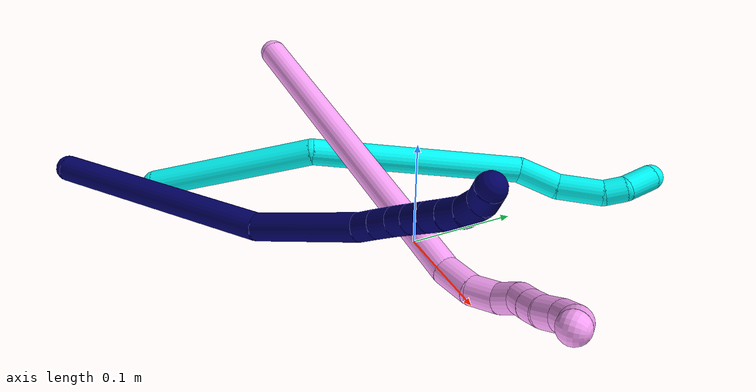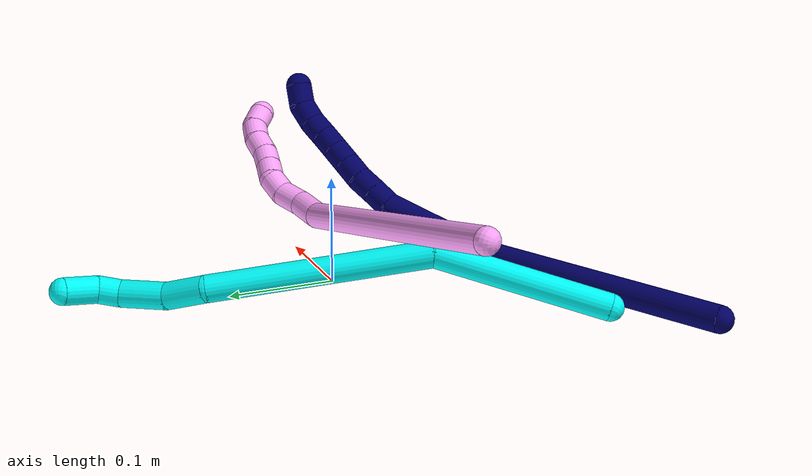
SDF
<sdf version="1.7">
 <world name="default">
  <model name="3">
   <static>0</static>
   <link name="3">
    <collision name="collision-cylinder-e_1_1_4">
     <pose>0.001823 0.079707 0.011138 -1.43196 0.02265 -0.019706</pose>
     <geometry><cylinder><radius>0.0125</radius><length>0.161005</length></cylinder></geometry>
     <surface>
      <friction><ode><mu>1.16</mu><mu2>1.16</mu2><slip1>0</slip1><slip2>0</slip2></ode></friction>
      <contact><ode><kp>1e+06</kp><kd>1</kd><max_vel>0</max_vel><min_depth>0.001</min_depth></ode></contact>
     </surface>
    </collision>
    <visual name="visual-cylinder-e_1_1_4">
     <pose>0.001823 0.079707 0.011138 -1.43196 0.02265 -0.019706</pose>
     <geometry><cylinder><radius>0.0125</radius><length>0.161005</length></cylinder></geometry>
     <material><ambient>0.003922 1 0.996078 1</ambient></material>
    </visual>
    <collision name="collision-cylinder-e_2_4_5">
     <pose>0.03531 0.253431 0.002932 -1.77371 0.318637 -0.389219</pose>
     <geometry><cylinder><radius>0.0125</radius><length>0.202146</length></cylinder></geometry>
     <surface>
      <friction><ode><mu>1.16</mu><mu2>1.16</mu2><slip1>0</slip1><slip2>0</slip2></ode></friction>
      <contact><ode><kp>1e+06</kp><kd>1</kd><max_vel>0</max_vel><min_depth>0.001</min_depth></ode></contact>
     </surface>
    </collision>
    <visual name="visual-cylinder-e_2_4_5">
     <pose>0.03531 0.253431 0.002932 -1.77371 0.318637 -0.389219</pose>
     <geometry><cylinder><radius>0.0125</radius><length>0.202146</length></cylinder></geometry>
     <material><ambient>0.003922 1 0.996078 1</ambient></material>
    </visual>
    <collision name="collision-cylinder-e_3_5_6">
     <pose>0.0789 0.363588 -0.014889 -1.47681 0.634256 -0.580568</pose>
     <geometry><cylinder><radius>0.0125</radius><length>0.040253</length></cylinder></geometry>
     <surface>
      <friction><ode><mu>1.16</mu><mu2>1.16</mu2><slip1>0</slip1><slip2>0</slip2></ode></friction>
      <contact><ode><kp>1e+06</kp><kd>1</kd><max_vel>0</max_vel><min_depth>0.001</min_depth></ode></contact>
     </surface>
    </collision>
    <visual name="visual-cylinder-e_3_5_6">
     <pose>0.0789 0.363588 -0.014889 -1.47681 0.634256 -0.580568</pose>
     <geometry><cylinder><radius>0.0125</radius><length>0.040253</length></cylinder></geometry>
     <material><ambient>0.003922 1 0.996078 1</ambient></material>
    </visual>
    <collision name="collision-cylinder-e_4_6_7">
     <pose>0.098554 0.400028 -0.010831 -1.44645 0.361189 -0.319618</pose>
     <geometry><cylinder><radius>0.0125</radius><length>0.043738</length></cylinder></geometry>
     <surface>
      <friction><ode><mu>1.16</mu><mu2>1.16</mu2><slip1>0</slip1><slip2>0</slip2></ode></friction>
      <contact><ode><kp>1e+06</kp><kd>1</kd><max_vel>0</max_vel><min_depth>0.001</min_depth></ode></contact>
     </surface>
    </collision>
    <visual name="visual-cylinder-e_4_6_7">
     <pose>0.098554 0.400028 -0.010831 -1.44645 0.361189 -0.319618</pose>
     <geometry><cylinder><radius>0.0125</radius><length>0.043738</length></cylinder></geometry>
     <material><ambient>0.003922 1 0.996078 1</ambient></material>
    </visual>
    <collision name="collision-cylinder-e_5_7_8">
     <pose>0.106585 0.430933 -0.008538 -1.59388 0.02849 -0.029155</pose>
     <geometry><cylinder><radius>0.0125</radius><length>0.021225</length></cylinder></geometry>
     <surface>
      <friction><ode><mu>1.16</mu><mu2>1.16</mu2><slip1>0</slip1><slip2>0</slip2></ode></friction>
      <contact><ode><kp>1e+06</kp><kd>1</kd><max_vel>0</max_vel><min_depth>0.001</min_depth></ode></contact>
     </surface>
    </collision>
    <visual name="visual-cylinder-e_5_7_8">
     <pose>0.106585 0.430933 -0.008538 -1.59388 0.02849 -0.029155</pose>
     <geometry><cylinder><radius>0.0125</radius><length>0.021225</length></cylinder></geometry>
     <material><ambient>0.003922 1 0.996078 1</ambient></material>
    </visual>
    <collision name="collision-cylinder-e_6_8_2">
     <pose>0.105081 0.455757 -0.015471 -2.01045 -0.11442 0.179974</pose>
     <geometry><cylinder><radius>0.0125</radius><length>0.031634</length></cylinder></geometry>
     <surface>
      <friction><ode><mu>1.16</mu><mu2>1.16</mu2><slip1>0</slip1><slip2>0</slip2></ode></friction>
      <contact><ode><kp>1e+06</kp><kd>1</kd><max_vel>0</max_vel><min_depth>0.001</min_depth></ode></contact>
     </surface>
    </collision>
    <visual name="visual-cylinder-e_6_8_2">
     <pose>0.105081 0.455757 -0.015471 -2.01045 -0.11442 0.179974</pose>
     <geometry><cylinder><radius>0.0125</radius><length>0.031634</length></cylinder></geometry>
     <material><ambient>0.003922 1 0.996078 1</ambient></material>
    </visual>
    <collision name="collision-sphere-2">
     <pose>0.103275 0.469977 -0.022159 0 -0 0</pose>
     <geometry><sphere><radius>0.0125</radius></sphere></geometry>
     <surface>
      <friction><ode><mu>1.16</mu><mu2>1.16</mu2><slip1>0</slip1><slip2>0</slip2></ode></friction>
      <contact><ode><kp>1e+06</kp><kd>1</kd><max_vel>0</max_vel><min_depth>0.001</min_depth></ode></contact>
     </surface>
    </collision>
    <visual name="visual-sphere-2">
     <pose>0.103275 0.469977 -0.022159 0 -0 0</pose>
     <geometry><sphere><radius>0.0125</radius></sphere></geometry>
     <material><ambient>0.003922 1 0.996078 1</ambient></material>
    </visual>
    <collision name="collision-sphere-4">
     <pose>0.003647 0.159415 0.022275 0 -0 0</pose>
     <geometry><sphere><radius>0.0125</radius></sphere></geometry>
     <surface>
      <friction><ode><mu>1.16</mu><mu2>1.16</mu2><slip1>0</slip1><slip2>0</slip2></ode></friction>
      <contact><ode><kp>1e+06</kp><kd>1</kd><max_vel>0</max_vel><min_depth>0.001</min_depth></ode></contact>
     </surface>
    </collision>
    <visual name="visual-sphere-4">
     <pose>0.003647 0.159415 0.022275 0 -0 0</pose>
     <geometry><sphere><radius>0.0125</radius></sphere></geometry>
     <material><ambient>0.003922 1 0.996078 1</ambient></material>
    </visual>
    <collision name="collision-sphere-1">
     <geometry><sphere><radius>0.0125</radius></sphere></geometry>
     <surface>
      <friction><ode><mu>1.16</mu><mu2>1.16</mu2><slip1>0</slip1><slip2>0</slip2></ode></friction>
      <contact><ode><kp>1e+06</kp><kd>1</kd><max_vel>0</max_vel><min_depth>0.001</min_depth></ode></contact>
     </surface>
    </collision>
    <visual name="visual-sphere-1">
     <geometry><sphere><radius>0.0125</radius></sphere></geometry>
     <material><ambient>0.003922 1 0.996078 1</ambient></material>
    </visual>
    <collision name="collision-sphere-8">
     <pose>0.106887 0.441538 -0.008783 0 -0 0</pose>
     <geometry><sphere><radius>0.0125</radius></sphere></geometry>
     <surface>
      <friction><ode><mu>1.16</mu><mu2>1.16</mu2><slip1>0</slip1><slip2>0</slip2></ode></friction>
      <contact><ode><kp>1e+06</kp><kd>1</kd><max_vel>0</max_vel><min_depth>0.001</min_depth></ode></contact>
     </surface>
    </collision>
    <visual name="visual-sphere-8">
     <pose>0.106887 0.441538 -0.008783 0 -0 0</pose>
     <geometry><sphere><radius>0.0125</radius></sphere></geometry>
     <material><ambient>0.003922 1 0.996078 1</ambient></material>
    </visual>
    <collision name="collision-sphere-5">
     <pose>0.066973 0.347447 -0.016411 0 -0 0</pose>
     <geometry><sphere><radius>0.0125</radius></sphere></geometry>
     <surface>
      <friction><ode><mu>1.16</mu><mu2>1.16</mu2><slip1>0</slip1><slip2>0</slip2></ode></friction>
      <contact><ode><kp>1e+06</kp><kd>1</kd><max_vel>0</max_vel><min_depth>0.001</min_depth></ode></contact>
     </surface>
    </collision>
    <visual name="visual-sphere-5">
     <pose>0.066973 0.347447 -0.016411 0 -0 0</pose>
     <geometry><sphere><radius>0.0125</radius></sphere></geometry>
     <material><ambient>0.003922 1 0.996078 1</ambient></material>
    </visual>
    <collision name="collision-sphere-6">
     <pose>0.090826 0.379728 -0.013368 0 -0 0</pose>
     <geometry><sphere><radius>0.0125</radius></sphere></geometry>
     <surface>
      <friction><ode><mu>1.16</mu><mu2>1.16</mu2><slip1>0</slip1><slip2>0</slip2></ode></friction>
      <contact><ode><kp>1e+06</kp><kd>1</kd><max_vel>0</max_vel><min_depth>0.001</min_depth></ode></contact>
     </surface>
    </collision>
    <visual name="visual-sphere-6">
     <pose>0.090826 0.379728 -0.013368 0 -0 0</pose>
     <geometry><sphere><radius>0.0125</radius></sphere></geometry>
     <material><ambient>0.003922 1 0.996078 1</ambient></material>
    </visual>
    <collision name="collision-sphere-7">
     <pose>0.106283 0.420328 -0.008293 0 -0 0</pose>
     <geometry><sphere><radius>0.0125</radius></sphere></geometry>
     <surface>
      <friction><ode><mu>1.16</mu><mu2>1.16</mu2><slip1>0</slip1><slip2>0</slip2></ode></friction>
      <contact><ode><kp>1e+06</kp><kd>1</kd><max_vel>0</max_vel><min_depth>0.001</min_depth></ode></contact>
     </surface>
    </collision>
    <visual name="visual-sphere-7">
     <pose>0.106283 0.420328 -0.008293 0 -0 0</pose>
     <geometry><sphere><radius>0.0125</radius></sphere></geometry>
     <material><ambient>0.003922 1 0.996078 1</ambient></material>
    </visual>
    <inertial>
     <pose>0.041008 0.239518 0.001284 0 -0 0</pose>
     <mass>0.5</mass>
     <inertia>
      <ixx>0.000729</ixx>
      <ixy>0</ixy>
      <ixz>0</ixz>
      <iyy>-0.000223</iyy>
      <iyz>0</iyz>
      <izz>-0.001252</izz>
     </inertia>
    </inertial>
   </link>
   <pose>-0.17849 -0.191599 0.011336 0.470115 1.0446 0.038012</pose>
  </model>
  <model name="4">
   <static>0</static>
   <link name="4">
    <collision name="collision-cylinder-e_1_1_4">
     <pose>0.07566 0.028278 0.136966 -0.2036 0.495897 -0.05171</pose>
     <geometry><cylinder><radius>0.0125</radius><length>0.318017</length></cylinder></geometry>
     <surface>
      <friction><ode><mu>1.16</mu><mu2>1.16</mu2><slip1>0</slip1><slip2>0</slip2></ode></friction>
      <contact><ode><kp>1e+06</kp><kd>1</kd><max_vel>0</max_vel><min_depth>0.001</min_depth></ode></contact>
     </surface>
    </collision>
    <visual name="visual-cylinder-e_1_1_4">
     <pose>0.07566 0.028278 0.136966 -0.2036 0.495897 -0.05171</pose>
     <geometry><cylinder><radius>0.0125</radius><length>0.318017</length></cylinder></geometry>
     <material><ambient>1 0.65098 0.996078 1</ambient></material>
    </visual>
    <collision name="collision-cylinder-e_2_4_5">
     <pose>0.158236 0.054716 0.289413 0.1183 0.417614 0.025095</pose>
     <geometry><cylinder><radius>0.0125</radius><length>0.034111</length></cylinder></geometry>
     <surface>
      <friction><ode><mu>1.16</mu><mu2>1.16</mu2><slip1>0</slip1><slip2>0</slip2></ode></friction>
      <contact><ode><kp>1e+06</kp><kd>1</kd><max_vel>0</max_vel><min_depth>0.001</min_depth></ode></contact>
     </surface>
    </collision>
    <visual name="visual-cylinder-e_2_4_5">
     <pose>0.158236 0.054716 0.289413 0.1183 0.417614 0.025095</pose>
     <geometry><cylinder><radius>0.0125</radius><length>0.034111</length></cylinder></geometry>
     <material><ambient>1 0.65098 0.996078 1</ambient></material>
    </visual>
    <collision name="collision-cylinder-e_3_5_6">
     <pose>0.166234 0.050766 0.317627 0.164205 0.083484 0.006874</pose>
     <geometry><cylinder><radius>0.0125</radius><length>0.025905</length></cylinder></geometry>
     <surface>
      <friction><ode><mu>1.16</mu><mu2>1.16</mu2><slip1>0</slip1><slip2>0</slip2></ode></friction>
      <contact><ode><kp>1e+06</kp><kd>1</kd><max_vel>0</max_vel><min_depth>0.001</min_depth></ode></contact>
     </surface>
    </collision>
    <visual name="visual-cylinder-e_3_5_6">
     <pose>0.166234 0.050766 0.317627 0.164205 0.083484 0.006874</pose>
     <geometry><cylinder><radius>0.0125</radius><length>0.025905</length></cylinder></geometry>
     <material><ambient>1 0.65098 0.996078 1</ambient></material>
    </visual>
    <collision name="collision-cylinder-e_4_6_7">
     <pose>0.168313 0.043429 0.339307 0.528767 0.096082 0.02603</pose>
     <geometry><cylinder><radius>0.0125</radius><length>0.02082</length></cylinder></geometry>
     <surface>
      <friction><ode><mu>1.16</mu><mu2>1.16</mu2><slip1>0</slip1><slip2>0</slip2></ode></friction>
      <contact><ode><kp>1e+06</kp><kd>1</kd><max_vel>0</max_vel><min_depth>0.001</min_depth></ode></contact>
     </surface>
    </collision>
    <visual name="visual-cylinder-e_4_6_7">
     <pose>0.168313 0.043429 0.339307 0.528767 0.096082 0.02603</pose>
     <geometry><cylinder><radius>0.0125</radius><length>0.02082</length></cylinder></geometry>
     <material><ambient>1 0.65098 0.996078 1</ambient></material>
    </visual>
    <collision name="collision-cylinder-e_5_7_8">
     <pose>0.17466 0.033517 0.355298 0.586943 0.563807 0.174598</pose>
     <geometry><cylinder><radius>0.0125</radius><length>0.020017</length></cylinder></geometry>
     <surface>
      <friction><ode><mu>1.16</mu><mu2>1.16</mu2><slip1>0</slip1><slip2>0</slip2></ode></friction>
      <contact><ode><kp>1e+06</kp><kd>1</kd><max_vel>0</max_vel><min_depth>0.001</min_depth></ode></contact>
     </surface>
    </collision>
    <visual name="visual-cylinder-e_5_7_8">
     <pose>0.17466 0.033517 0.355298 0.586943 0.563807 0.174598</pose>
     <geometry><cylinder><radius>0.0125</radius><length>0.020017</length></cylinder></geometry>
     <material><ambient>1 0.65098 0.996078 1</ambient></material>
    </visual>
    <collision name="collision-cylinder-e_6_8_9">
     <pose>0.184926 0.023934 0.369592 0.59412 0.511995 0.159905</pose>
     <geometry><cylinder><radius>0.0125</radius><length>0.020075</length></cylinder></geometry>
     <surface>
      <friction><ode><mu>1.16</mu><mu2>1.16</mu2><slip1>0</slip1><slip2>0</slip2></ode></friction>
      <contact><ode><kp>1e+06</kp><kd>1</kd><max_vel>0</max_vel><min_depth>0.001</min_depth></ode></contact>
     </surface>
    </collision>
    <visual name="visual-cylinder-e_6_8_9">
     <pose>0.184926 0.023934 0.369592 0.59412 0.511995 0.159905</pose>
     <geometry><cylinder><radius>0.0125</radius><length>0.020075</length></cylinder></geometry>
     <material><ambient>1 0.65098 0.996078 1</ambient></material>
    </visual>
    <collision name="collision-cylinder-e_7_9_10">
     <pose>0.192937 0.014001 0.385527 0.52541 0.298948 0.080953</pose>
     <geometry><cylinder><radius>0.0125</radius><length>0.021008</length></cylinder></geometry>
     <surface>
      <friction><ode><mu>1.16</mu><mu2>1.16</mu2><slip1>0</slip1><slip2>0</slip2></ode></friction>
      <contact><ode><kp>1e+06</kp><kd>1</kd><max_vel>0</max_vel><min_depth>0.001</min_depth></ode></contact>
     </surface>
    </collision>
    <visual name="visual-cylinder-e_7_9_10">
     <pose>0.192937 0.014001 0.385527 0.52541 0.298948 0.080953</pose>
     <geometry><cylinder><radius>0.0125</radius><length>0.021008</length></cylinder></geometry>
     <material><ambient>1 0.65098 0.996078 1</ambient></material>
    </visual>
    <collision name="collision-cylinder-e_8_10_11">
     <pose>0.201074 0.003534 0.400956 0.677976 0.527406 0.189825</pose>
     <geometry><cylinder><radius>0.0125</radius><length>0.020042</length></cylinder></geometry>
     <surface>
      <friction><ode><mu>1.16</mu><mu2>1.16</mu2><slip1>0</slip1><slip2>0</slip2></ode></friction>
      <contact><ode><kp>1e+06</kp><kd>1</kd><max_vel>0</max_vel><min_depth>0.001</min_depth></ode></contact>
     </surface>
    </collision>
    <visual name="visual-cylinder-e_8_10_11">
     <pose>0.201074 0.003534 0.400956 0.677976 0.527406 0.189825</pose>
     <geometry><cylinder><radius>0.0125</radius><length>0.020042</length></cylinder></geometry>
     <material><ambient>1 0.65098 0.996078 1</ambient></material>
    </visual>
    <collision name="collision-cylinder-e_9_11_2">
     <pose>0.213541 -0.008182 0.410036 1.21499 0.83619 0.599149</pose>
     <geometry><cylinder><radius>0.0125</radius><length>0.020006</length></cylinder></geometry>
     <surface>
      <friction><ode><mu>1.16</mu><mu2>1.16</mu2><slip1>0</slip1><slip2>0</slip2></ode></friction>
      <contact><ode><kp>1e+06</kp><kd>1</kd><max_vel>0</max_vel><min_depth>0.001</min_depth></ode></contact>
     </surface>
    </collision>
    <visual name="visual-cylinder-e_9_11_2">
     <pose>0.213541 -0.008182 0.410036 1.21499 0.83619 0.599149</pose>
     <geometry><cylinder><radius>0.0125</radius><length>0.020006</length></cylinder></geometry>
     <material><ambient>1 0.65098 0.996078 1</ambient></material>
    </visual>
    <collision name="collision-sphere-2">
     <pose>0.220964 -0.014467 0.412371 0 -0 0</pose>
     <geometry><sphere><radius>0.0125</radius></sphere></geometry>
     <surface>
      <friction><ode><mu>1.16</mu><mu2>1.16</mu2><slip1>0</slip1><slip2>0</slip2></ode></friction>
      <contact><ode><kp>1e+06</kp><kd>1</kd><max_vel>0</max_vel><min_depth>0.001</min_depth></ode></contact>
     </surface>
    </collision>
    <visual name="visual-sphere-2">
     <pose>0.220964 -0.014467 0.412371 0 -0 0</pose>
     <geometry><sphere><radius>0.0125</radius></sphere></geometry>
     <material><ambient>1 0.65098 0.996078 1</ambient></material>
    </visual>
    <collision name="collision-sphere-11">
     <pose>0.206118 -0.001897 0.4077 0 -0 0</pose>
     <geometry><sphere><radius>0.0125</radius></sphere></geometry>
     <surface>
      <friction><ode><mu>1.16</mu><mu2>1.16</mu2><slip1>0</slip1><slip2>0</slip2></ode></friction>
      <contact><ode><kp>1e+06</kp><kd>1</kd><max_vel>0</max_vel><min_depth>0.001</min_depth></ode></contact>
     </surface>
    </collision>
    <visual name="visual-sphere-11">
     <pose>0.206118 -0.001897 0.4077 0 -0 0</pose>
     <geometry><sphere><radius>0.0125</radius></sphere></geometry>
     <material><ambient>1 0.65098 0.996078 1</ambient></material>
    </visual>
    <collision name="collision-sphere-10">
     <pose>0.196031 0.008966 0.394212 0 -0 0</pose>
     <geometry><sphere><radius>0.0125</radius></sphere></geometry>
     <surface>
      <friction><ode><mu>1.16</mu><mu2>1.16</mu2><slip1>0</slip1><slip2>0</slip2></ode></friction>
      <contact><ode><kp>1e+06</kp><kd>1</kd><max_vel>0</max_vel><min_depth>0.001</min_depth></ode></contact>
     </surface>
    </collision>
    <visual name="visual-sphere-10">
     <pose>0.196031 0.008966 0.394212 0 -0 0</pose>
     <geometry><sphere><radius>0.0125</radius></sphere></geometry>
     <material><ambient>1 0.65098 0.996078 1</ambient></material>
    </visual>
    <collision name="collision-sphere-9">
     <pose>0.189843 0.019035 0.376843 0 -0 0</pose>
     <geometry><sphere><radius>0.0125</radius></sphere></geometry>
     <surface>
      <friction><ode><mu>1.16</mu><mu2>1.16</mu2><slip1>0</slip1><slip2>0</slip2></ode></friction>
      <contact><ode><kp>1e+06</kp><kd>1</kd><max_vel>0</max_vel><min_depth>0.001</min_depth></ode></contact>
     </surface>
    </collision>
    <visual name="visual-sphere-9">
     <pose>0.189843 0.019035 0.376843 0 -0 0</pose>
     <geometry><sphere><radius>0.0125</radius></sphere></geometry>
     <material><ambient>1 0.65098 0.996078 1</ambient></material>
    </visual>
    <collision name="collision-sphere-4">
     <pose>0.151319 0.056556 0.273932 0 -0 0</pose>
     <geometry><sphere><radius>0.0125</radius></sphere></geometry>
     <surface>
      <friction><ode><mu>1.16</mu><mu2>1.16</mu2><slip1>0</slip1><slip2>0</slip2></ode></friction>
      <contact><ode><kp>1e+06</kp><kd>1</kd><max_vel>0</max_vel><min_depth>0.001</min_depth></ode></contact>
     </surface>
    </collision>
    <visual name="visual-sphere-4">
     <pose>0.151319 0.056556 0.273932 0 -0 0</pose>
     <geometry><sphere><radius>0.0125</radius></sphere></geometry>
     <material><ambient>1 0.65098 0.996078 1</ambient></material>
    </visual>
    <collision name="collision-sphere-1">
     <geometry><sphere><radius>0.0125</radius></sphere></geometry>
     <surface>
      <friction><ode><mu>1.16</mu><mu2>1.16</mu2><slip1>0</slip1><slip2>0</slip2></ode></friction>
      <contact><ode><kp>1e+06</kp><kd>1</kd><max_vel>0</max_vel><min_depth>0.001</min_depth></ode></contact>
     </surface>
    </collision>
    <visual name="visual-sphere-1">
     <geometry><sphere><radius>0.0125</radius></sphere></geometry>
     <material><ambient>1 0.65098 0.996078 1</ambient></material>
    </visual>
    <collision name="collision-sphere-8">
     <pose>0.180008 0.028832 0.362341 0 -0 0</pose>
     <geometry><sphere><radius>0.0125</radius></sphere></geometry>
     <surface>
      <friction><ode><mu>1.16</mu><mu2>1.16</mu2><slip1>0</slip1><slip2>0</slip2></ode></friction>
      <contact><ode><kp>1e+06</kp><kd>1</kd><max_vel>0</max_vel><min_depth>0.001</min_depth></ode></contact>
     </surface>
    </collision>
    <visual name="visual-sphere-8">
     <pose>0.180008 0.028832 0.362341 0 -0 0</pose>
     <geometry><sphere><radius>0.0125</radius></sphere></geometry>
     <material><ambient>1 0.65098 0.996078 1</ambient></material>
    </visual>
    <collision name="collision-sphere-5">
     <pose>0.165154 0.052876 0.304893 0 -0 0</pose>
     <geometry><sphere><radius>0.0125</radius></sphere></geometry>
     <surface>
      <friction><ode><mu>1.16</mu><mu2>1.16</mu2><slip1>0</slip1><slip2>0</slip2></ode></friction>
      <contact><ode><kp>1e+06</kp><kd>1</kd><max_vel>0</max_vel><min_depth>0.001</min_depth></ode></contact>
     </surface>
    </collision>
    <visual name="visual-sphere-5">
     <pose>0.165154 0.052876 0.304893 0 -0 0</pose>
     <geometry><sphere><radius>0.0125</radius></sphere></geometry>
     <material><ambient>1 0.65098 0.996078 1</ambient></material>
    </visual>
    <collision name="collision-sphere-6">
     <pose>0.167314 0.048656 0.33036 0 -0 0</pose>
     <geometry><sphere><radius>0.0125</radius></sphere></geometry>
     <surface>
      <friction><ode><mu>1.16</mu><mu2>1.16</mu2><slip1>0</slip1><slip2>0</slip2></ode></friction>
      <contact><ode><kp>1e+06</kp><kd>1</kd><max_vel>0</max_vel><min_depth>0.001</min_depth></ode></contact>
     </surface>
    </collision>
    <visual name="visual-sphere-6">
     <pose>0.167314 0.048656 0.33036 0 -0 0</pose>
     <geometry><sphere><radius>0.0125</radius></sphere></geometry>
     <material><ambient>1 0.65098 0.996078 1</ambient></material>
    </visual>
    <collision name="collision-sphere-7">
     <pose>0.169311 0.038202 0.348254 0 -0 0</pose>
     <geometry><sphere><radius>0.0125</radius></sphere></geometry>
     <surface>
      <friction><ode><mu>1.16</mu><mu2>1.16</mu2><slip1>0</slip1><slip2>0</slip2></ode></friction>
      <contact><ode><kp>1e+06</kp><kd>1</kd><max_vel>0</max_vel><min_depth>0.001</min_depth></ode></contact>
     </surface>
    </collision>
    <visual name="visual-sphere-7">
     <pose>0.169311 0.038202 0.348254 0 -0 0</pose>
     <geometry><sphere><radius>0.0125</radius></sphere></geometry>
     <material><ambient>1 0.65098 0.996078 1</ambient></material>
    </visual>
    <inertial>
     <pose>0.113666 0.028862 0.215183 0 -0 0</pose>
     <mass>0.5</mass>
     <inertia>
      <ixx>0.002276</ixx>
      <ixy>0</ixy>
      <ixz>0</ixz>
      <iyy>0.002539</iyy>
      <iyz>0</iyz>
      <izz>-0.001728</izz>
     </inertia>
    </inertial>
   </link>
   <pose>-0.219901 -0.048855 0.107281 -1.52403 0.205253 -1.0053</pose>
  </model>
  <model name="7">
   <static>0</static>
   <link name="7">
    <collision name="collision-cylinder-e_1_1_4">
     <pose>0.024224 0.093249 0.066481 -0.951439 0.208448 -0.107675</pose>
     <geometry><cylinder><radius>0.0125</radius><length>0.23411</length></cylinder></geometry>
     <surface>
      <friction><ode><mu>1.16</mu><mu2>1.16</mu2><slip1>0</slip1><slip2>0</slip2></ode></friction>
      <contact><ode><kp>1e+06</kp><kd>1</kd><max_vel>0</max_vel><min_depth>0.001</min_depth></ode></contact>
     </surface>
    </collision>
    <visual name="visual-cylinder-e_1_1_4">
     <pose>0.024224 0.093249 0.066481 -0.951439 0.208448 -0.107675</pose>
     <geometry><cylinder><radius>0.0125</radius><length>0.23411</length></cylinder></geometry>
     <material><ambient>0.003922 0 0.403922 1</ambient></material>
    </visual>
    <collision name="collision-cylinder-e_2_4_5">
     <pose>0.052253 0.221552 0.171845 -0.73366 0.072576 -0.027896</pose>
     <geometry><cylinder><radius>0.0125</radius><length>0.104979</length></cylinder></geometry>
     <surface>
      <friction><ode><mu>1.16</mu><mu2>1.16</mu2><slip1>0</slip1><slip2>0</slip2></ode></friction>
      <contact><ode><kp>1e+06</kp><kd>1</kd><max_vel>0</max_vel><min_depth>0.001</min_depth></ode></contact>
     </surface>
    </collision>
    <visual name="visual-cylinder-e_2_4_5">
     <pose>0.052253 0.221552 0.171845 -0.73366 0.072576 -0.027896</pose>
     <geometry><cylinder><radius>0.0125</radius><length>0.104979</length></cylinder></geometry>
     <material><ambient>0.003922 0 0.403922 1</ambient></material>
    </visual>
    <collision name="collision-cylinder-e_3_5_6">
     <pose>0.057667 0.261098 0.21977 -0.461039 0.157863 -0.037122</pose>
     <geometry><cylinder><radius>0.0125</radius><length>0.020447</length></cylinder></geometry>
     <surface>
      <friction><ode><mu>1.16</mu><mu2>1.16</mu2><slip1>0</slip1><slip2>0</slip2></ode></friction>
      <contact><ode><kp>1e+06</kp><kd>1</kd><max_vel>0</max_vel><min_depth>0.001</min_depth></ode></contact>
     </surface>
    </collision>
    <visual name="visual-cylinder-e_3_5_6">
     <pose>0.057667 0.261098 0.21977 -0.461039 0.157863 -0.037122</pose>
     <geometry><cylinder><radius>0.0125</radius><length>0.020447</length></cylinder></geometry>
     <material><ambient>0.003922 0 0.403922 1</ambient></material>
    </visual>
    <collision name="collision-cylinder-e_4_6_7">
     <pose>0.060779 0.270292 0.237664 -0.488342 0.149044 -0.037198</pose>
     <geometry><cylinder><radius>0.0125</radius><length>0.020271</length></cylinder></geometry>
     <surface>
      <friction><ode><mu>1.16</mu><mu2>1.16</mu2><slip1>0</slip1><slip2>0</slip2></ode></friction>
      <contact><ode><kp>1e+06</kp><kd>1</kd><max_vel>0</max_vel><min_depth>0.001</min_depth></ode></contact>
     </surface>
    </collision>
    <visual name="visual-cylinder-e_4_6_7">
     <pose>0.060779 0.270292 0.237664 -0.488342 0.149044 -0.037198</pose>
     <geometry><cylinder><radius>0.0125</radius><length>0.020271</length></cylinder></geometry>
     <material><ambient>0.003922 0 0.403922 1</ambient></material>
    </visual>
    <collision name="collision-cylinder-e_5_7_8">
     <pose>0.065147 0.278701 0.255423 -0.394259 0.288452 -0.057997</pose>
     <geometry><cylinder><radius>0.0125</radius><length>0.020127</length></cylinder></geometry>
     <surface>
      <friction><ode><mu>1.16</mu><mu2>1.16</mu2><slip1>0</slip1><slip2>0</slip2></ode></friction>
      <contact><ode><kp>1e+06</kp><kd>1</kd><max_vel>0</max_vel><min_depth>0.001</min_depth></ode></contact>
     </surface>
    </collision>
    <visual name="visual-cylinder-e_5_7_8">
     <pose>0.065147 0.278701 0.255423 -0.394259 0.288452 -0.057997</pose>
     <geometry><cylinder><radius>0.0125</radius><length>0.020127</length></cylinder></geometry>
     <material><ambient>0.003922 0 0.403922 1</ambient></material>
    </visual>
    <collision name="collision-cylinder-e_6_8_9">
     <pose>0.070851 0.286087 0.273187 -0.393813 0.288054 -0.057849</pose>
     <geometry><cylinder><radius>0.0125</radius><length>0.020005</length></cylinder></geometry>
     <surface>
      <friction><ode><mu>1.16</mu><mu2>1.16</mu2><slip1>0</slip1><slip2>0</slip2></ode></friction>
      <contact><ode><kp>1e+06</kp><kd>1</kd><max_vel>0</max_vel><min_depth>0.001</min_depth></ode></contact>
     </surface>
    </collision>
    <visual name="visual-cylinder-e_6_8_9">
     <pose>0.070851 0.286087 0.273187 -0.393813 0.288054 -0.057849</pose>
     <geometry><cylinder><radius>0.0125</radius><length>0.020005</length></cylinder></geometry>
     <material><ambient>0.003922 0 0.403922 1</ambient></material>
    </visual>
    <collision name="collision-cylinder-e_7_9_10">
     <pose>0.076474 0.293499 0.290896 -0.39897 0.281824 -0.057342</pose>
     <geometry><cylinder><radius>0.0125</radius><length>0.020004</length></cylinder></geometry>
     <surface>
      <friction><ode><mu>1.16</mu><mu2>1.16</mu2><slip1>0</slip1><slip2>0</slip2></ode></friction>
      <contact><ode><kp>1e+06</kp><kd>1</kd><max_vel>0</max_vel><min_depth>0.001</min_depth></ode></contact>
     </surface>
    </collision>
    <visual name="visual-cylinder-e_7_9_10">
     <pose>0.076474 0.293499 0.290896 -0.39897 0.281824 -0.057342</pose>
     <geometry><cylinder><radius>0.0125</radius><length>0.020004</length></cylinder></geometry>
     <material><ambient>0.003922 0 0.403922 1</ambient></material>
    </visual>
    <collision name="collision-cylinder-e_8_10_11">
     <pose>0.081753 0.301106 0.308651 -0.410503 0.251717 -0.05267</pose>
     <geometry><cylinder><radius>0.0125</radius><length>0.020049</length></cylinder></geometry>
     <surface>
      <friction><ode><mu>1.16</mu><mu2>1.16</mu2><slip1>0</slip1><slip2>0</slip2></ode></friction>
      <contact><ode><kp>1e+06</kp><kd>1</kd><max_vel>0</max_vel><min_depth>0.001</min_depth></ode></contact>
     </surface>
    </collision>
    <visual name="visual-cylinder-e_8_10_11">
     <pose>0.081753 0.301106 0.308651 -0.410503 0.251717 -0.05267</pose>
     <geometry><cylinder><radius>0.0125</radius><length>0.020049</length></cylinder></geometry>
     <material><ambient>0.003922 0 0.403922 1</ambient></material>
    </visual>
    <collision name="collision-cylinder-e_9_11_12">
     <pose>0.085228 0.306852 0.32733 -0.189161 0.098012 -0.009305</pose>
     <geometry><cylinder><radius>0.0125</radius><length>0.020004</length></cylinder></geometry>
     <surface>
      <friction><ode><mu>1.16</mu><mu2>1.16</mu2><slip1>0</slip1><slip2>0</slip2></ode></friction>
      <contact><ode><kp>1e+06</kp><kd>1</kd><max_vel>0</max_vel><min_depth>0.001</min_depth></ode></contact>
     </surface>
    </collision>
    <visual name="visual-cylinder-e_9_11_12">
     <pose>0.085228 0.306852 0.32733 -0.189161 0.098012 -0.009305</pose>
     <geometry><cylinder><radius>0.0125</radius><length>0.020004</length></cylinder></geometry>
     <material><ambient>0.003922 0 0.403922 1</ambient></material>
    </visual>
    <collision name="collision-cylinder-e_10_12_2">
     <pose>0.087963 0.306852 0.346773 0.191233 0.176465 0.016968</pose>
     <geometry><cylinder><radius>0.0125</radius><length>0.020003</length></cylinder></geometry>
     <surface>
      <friction><ode><mu>1.16</mu><mu2>1.16</mu2><slip1>0</slip1><slip2>0</slip2></ode></friction>
      <contact><ode><kp>1e+06</kp><kd>1</kd><max_vel>0</max_vel><min_depth>0.001</min_depth></ode></contact>
     </surface>
    </collision>
    <visual name="visual-cylinder-e_10_12_2">
     <pose>0.087963 0.306852 0.346773 0.191233 0.176465 0.016968</pose>
     <geometry><cylinder><radius>0.0125</radius><length>0.020003</length></cylinder></geometry>
     <material><ambient>0.003922 0 0.403922 1</ambient></material>
    </visual>
    <collision name="collision-sphere-2">
     <pose>0.089719 0.304981 0.356439 0 -0 0</pose>
     <geometry><sphere><radius>0.0125</radius></sphere></geometry>
     <surface>
      <friction><ode><mu>1.16</mu><mu2>1.16</mu2><slip1>0</slip1><slip2>0</slip2></ode></friction>
      <contact><ode><kp>1e+06</kp><kd>1</kd><max_vel>0</max_vel><min_depth>0.001</min_depth></ode></contact>
     </surface>
    </collision>
    <visual name="visual-sphere-2">
     <pose>0.089719 0.304981 0.356439 0 -0 0</pose>
     <geometry><sphere><radius>0.0125</radius></sphere></geometry>
     <material><ambient>0.003922 0 0.403922 1</ambient></material>
    </visual>
    <collision name="collision-sphere-12">
     <pose>0.086207 0.308723 0.337106 0 -0 0</pose>
     <geometry><sphere><radius>0.0125</radius></sphere></geometry>
     <surface>
      <friction><ode><mu>1.16</mu><mu2>1.16</mu2><slip1>0</slip1><slip2>0</slip2></ode></friction>
      <contact><ode><kp>1e+06</kp><kd>1</kd><max_vel>0</max_vel><min_depth>0.001</min_depth></ode></contact>
     </surface>
    </collision>
    <visual name="visual-sphere-12">
     <pose>0.086207 0.308723 0.337106 0 -0 0</pose>
     <geometry><sphere><radius>0.0125</radius></sphere></geometry>
     <material><ambient>0.003922 0 0.403922 1</ambient></material>
    </visual>
    <collision name="collision-sphere-11">
     <pose>0.08425 0.30498 0.317553 0 -0 0</pose>
     <geometry><sphere><radius>0.0125</radius></sphere></geometry>
     <surface>
      <friction><ode><mu>1.16</mu><mu2>1.16</mu2><slip1>0</slip1><slip2>0</slip2></ode></friction>
      <contact><ode><kp>1e+06</kp><kd>1</kd><max_vel>0</max_vel><min_depth>0.001</min_depth></ode></contact>
     </surface>
    </collision>
    <visual name="visual-sphere-11">
     <pose>0.08425 0.30498 0.317553 0 -0 0</pose>
     <geometry><sphere><radius>0.0125</radius></sphere></geometry>
     <material><ambient>0.003922 0 0.403922 1</ambient></material>
    </visual>
    <collision name="collision-sphere-10">
     <pose>0.079256 0.297231 0.299749 0 -0 0</pose>
     <geometry><sphere><radius>0.0125</radius></sphere></geometry>
     <surface>
      <friction><ode><mu>1.16</mu><mu2>1.16</mu2><slip1>0</slip1><slip2>0</slip2></ode></friction>
      <contact><ode><kp>1e+06</kp><kd>1</kd><max_vel>0</max_vel><min_depth>0.001</min_depth></ode></contact>
     </surface>
    </collision>
    <visual name="visual-sphere-10">
     <pose>0.079256 0.297231 0.299749 0 -0 0</pose>
     <geometry><sphere><radius>0.0125</radius></sphere></geometry>
     <material><ambient>0.003922 0 0.403922 1</ambient></material>
    </visual>
    <collision name="collision-sphere-9">
     <pose>0.073693 0.289767 0.282043 0 -0 0</pose>
     <geometry><sphere><radius>0.0125</radius></sphere></geometry>
     <surface>
      <friction><ode><mu>1.16</mu><mu2>1.16</mu2><slip1>0</slip1><slip2>0</slip2></ode></friction>
      <contact><ode><kp>1e+06</kp><kd>1</kd><max_vel>0</max_vel><min_depth>0.001</min_depth></ode></contact>
     </surface>
    </collision>
    <visual name="visual-sphere-9">
     <pose>0.073693 0.289767 0.282043 0 -0 0</pose>
     <geometry><sphere><radius>0.0125</radius></sphere></geometry>
     <material><ambient>0.003922 0 0.403922 1</ambient></material>
    </visual>
    <collision name="collision-sphere-4">
     <pose>0.048447 0.186498 0.132962 0 -0 0</pose>
     <geometry><sphere><radius>0.0125</radius></sphere></geometry>
     <surface>
      <friction><ode><mu>1.16</mu><mu2>1.16</mu2><slip1>0</slip1><slip2>0</slip2></ode></friction>
      <contact><ode><kp>1e+06</kp><kd>1</kd><max_vel>0</max_vel><min_depth>0.001</min_depth></ode></contact>
     </surface>
    </collision>
    <visual name="visual-sphere-4">
     <pose>0.048447 0.186498 0.132962 0 -0 0</pose>
     <geometry><sphere><radius>0.0125</radius></sphere></geometry>
     <material><ambient>0.003922 0 0.403922 1</ambient></material>
    </visual>
    <collision name="collision-sphere-1">
     <geometry><sphere><radius>0.0125</radius></sphere></geometry>
     <surface>
      <friction><ode><mu>1.16</mu><mu2>1.16</mu2><slip1>0</slip1><slip2>0</slip2></ode></friction>
      <contact><ode><kp>1e+06</kp><kd>1</kd><max_vel>0</max_vel><min_depth>0.001</min_depth></ode></contact>
     </surface>
    </collision>
    <visual name="visual-sphere-1">
     <geometry><sphere><radius>0.0125</radius></sphere></geometry>
     <material><ambient>0.003922 0 0.403922 1</ambient></material>
    </visual>
    <collision name="collision-sphere-8">
     <pose>0.06801 0.282407 0.264331 0 -0 0</pose>
     <geometry><sphere><radius>0.0125</radius></sphere></geometry>
     <surface>
      <friction><ode><mu>1.16</mu><mu2>1.16</mu2><slip1>0</slip1><slip2>0</slip2></ode></friction>
      <contact><ode><kp>1e+06</kp><kd>1</kd><max_vel>0</max_vel><min_depth>0.001</min_depth></ode></contact>
     </surface>
    </collision>
    <visual name="visual-sphere-8">
     <pose>0.06801 0.282407 0.264331 0 -0 0</pose>
     <geometry><sphere><radius>0.0125</radius></sphere></geometry>
     <material><ambient>0.003922 0 0.403922 1</ambient></material>
    </visual>
    <collision name="collision-sphere-5">
     <pose>0.056059 0.256607 0.210728 0 -0 0</pose>
     <geometry><sphere><radius>0.0125</radius></sphere></geometry>
     <surface>
      <friction><ode><mu>1.16</mu><mu2>1.16</mu2><slip1>0</slip1><slip2>0</slip2></ode></friction>
      <contact><ode><kp>1e+06</kp><kd>1</kd><max_vel>0</max_vel><min_depth>0.001</min_depth></ode></contact>
     </surface>
    </collision>
    <visual name="visual-sphere-5">
     <pose>0.056059 0.256607 0.210728 0 -0 0</pose>
     <geometry><sphere><radius>0.0125</radius></sphere></geometry>
     <material><ambient>0.003922 0 0.403922 1</ambient></material>
    </visual>
    <collision name="collision-sphere-6">
     <pose>0.059274 0.26559 0.228812 0 -0 0</pose>
     <geometry><sphere><radius>0.0125</radius></sphere></geometry>
     <surface>
      <friction><ode><mu>1.16</mu><mu2>1.16</mu2><slip1>0</slip1><slip2>0</slip2></ode></friction>
      <contact><ode><kp>1e+06</kp><kd>1</kd><max_vel>0</max_vel><min_depth>0.001</min_depth></ode></contact>
     </surface>
    </collision>
    <visual name="visual-sphere-6">
     <pose>0.059274 0.26559 0.228812 0 -0 0</pose>
     <geometry><sphere><radius>0.0125</radius></sphere></geometry>
     <material><ambient>0.003922 0 0.403922 1</ambient></material>
    </visual>
    <collision name="collision-sphere-7">
     <pose>0.062284 0.274995 0.246515 0 -0 0</pose>
     <geometry><sphere><radius>0.0125</radius></sphere></geometry>
     <surface>
      <friction><ode><mu>1.16</mu><mu2>1.16</mu2><slip1>0</slip1><slip2>0</slip2></ode></friction>
      <contact><ode><kp>1e+06</kp><kd>1</kd><max_vel>0</max_vel><min_depth>0.001</min_depth></ode></contact>
     </surface>
    </collision>
    <visual name="visual-sphere-7">
     <pose>0.062284 0.274995 0.246515 0 -0 0</pose>
     <geometry><sphere><radius>0.0125</radius></sphere></geometry>
     <material><ambient>0.003922 0 0.403922 1</ambient></material>
    </visual>
    <inertial>
     <pose>0.045859 0.182847 0.158026 0 -0 0</pose>
     <mass>0.5</mass>
     <inertia>
      <ixx>0.001051</ixx>
      <ixy>0</ixy>
      <ixz>0</ixz>
      <iyy>0.000635</iyy>
      <iyz>0</iyz>
      <izz>-0.001135</izz>
     </inertia>
    </inertial>
   </link>
   <pose>-0.241215 -0.263002 0.01252 -0.520156 0.210626 -0.753891</pose>
  </model>
 </world>
</sdf>
